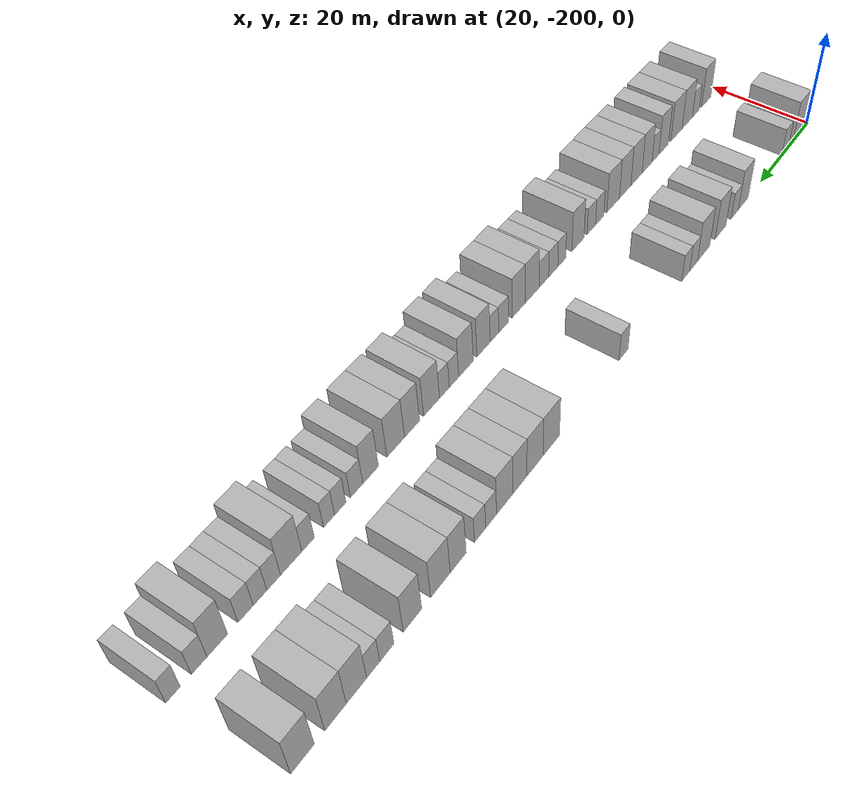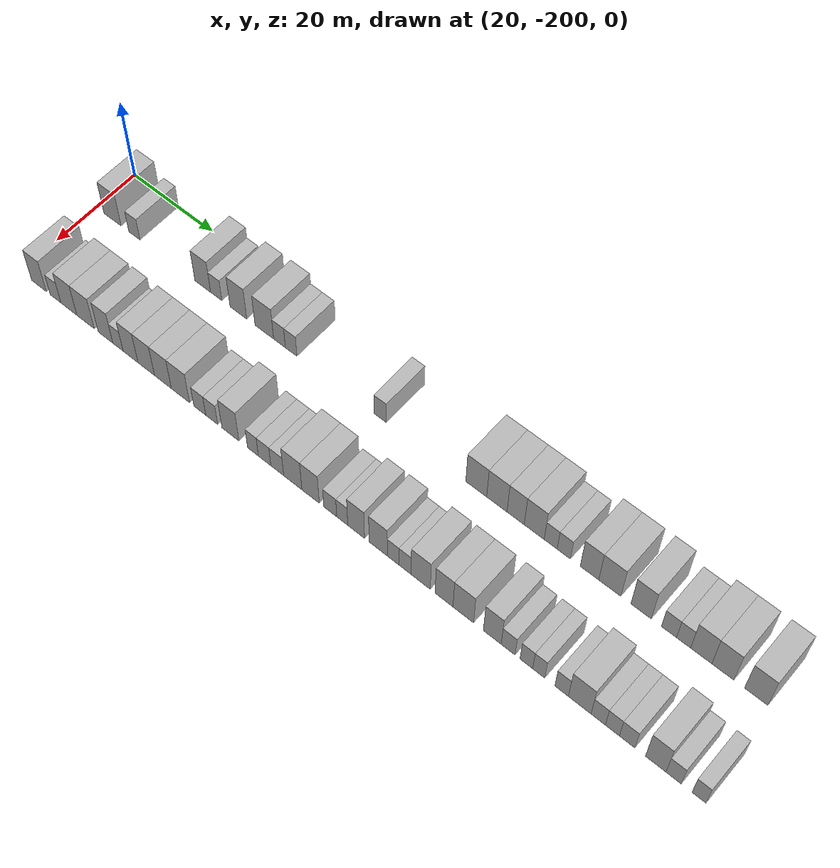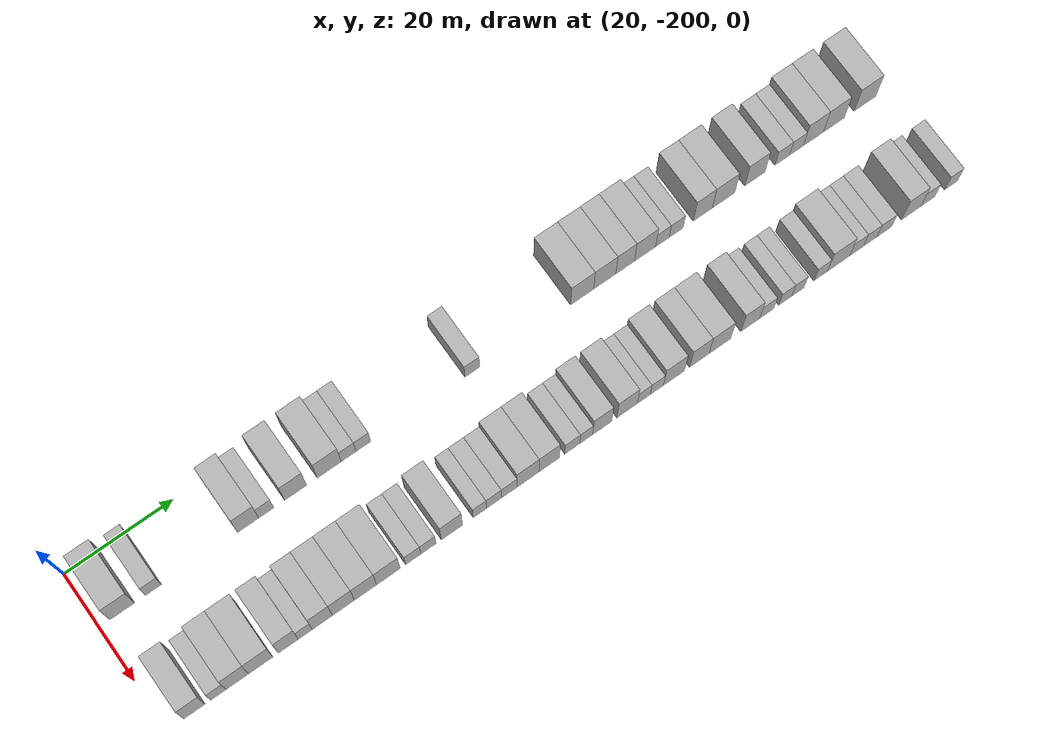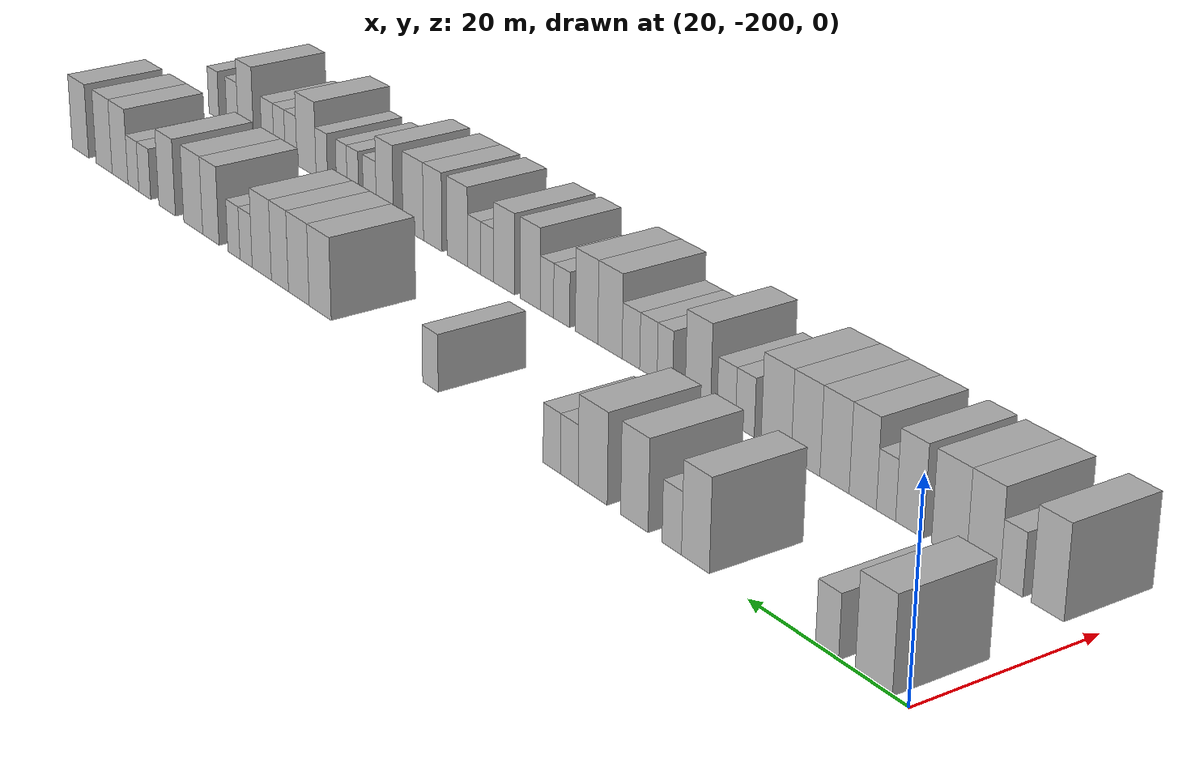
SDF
<sdf version="1.6">
 <world name="default">
  <model name="building_1">
   <static>1</static>
   <pose>25.0000 -195.7773 0 0.000000 0.000000 0.000000</pose>
   <link name="link">
    <pose>0 0 4.50 0 0 0</pose>
    <collision name="collision"><geometry><box><size>10.0000 4.4454 9.0000</size></box></geometry></collision>
    <visual name="visual">
     <cast_shadows>0</cast_shadows>
     <geometry><box><size>10.0000 4.4454 9.0000</size></box></geometry>
     <material>
      <script>
       <uri>model://HANNAS_wall/materials/scripts</uri>
       <uri>model://HANNAS_wall/materials/textures</uri>
       <name>vrc/HANNAS_wall</name>
      </script>
     </material>
    </visual>
   </link>
  </model>
  <model name="building_2">
   <static>1</static>
   <pose>25.0000 -190.1237 0 0.000000 0.000000 0.000000</pose>
   <link name="link">
    <pose>0 0 3.00 0 0 0</pose>
    <collision name="collision"><geometry><box><size>10.0000 2.8618 6.0000</size></box></geometry></collision>
    <visual name="visual">
     <cast_shadows>0</cast_shadows>
     <geometry><box><size>10.0000 2.8618 6.0000</size></box></geometry>
     <material>
      <script>
       <uri>model://HANNAS_wall/materials/scripts</uri>
       <uri>model://HANNAS_wall/materials/textures</uri>
       <name>vrc/HANNAS_wall</name>
      </script>
     </material>
    </visual>
   </link>
  </model>
  <model name="building_3">
   <static>1</static>
   <pose>25.0000 -172.8571 0 0.000000 0.000000 0.000000</pose>
   <link name="link">
    <pose>0 0 4.50 0 0 0</pose>
    <collision name="collision"><geometry><box><size>10.0000 3.8905 9.0000</size></box></geometry></collision>
    <visual name="visual">
     <cast_shadows>0</cast_shadows>
     <geometry><box><size>10.0000 3.8905 9.0000</size></box></geometry>
     <material>
      <script>
       <uri>model://HANNAS_wall/materials/scripts</uri>
       <uri>model://HANNAS_wall/materials/textures</uri>
       <name>vrc/HANNAS_wall</name>
      </script>
     </material>
    </visual>
   </link>
  </model>
  <model name="building_4">
   <static>1</static>
   <pose>25.0000 -169.5295 0 0.000000 0.000000 0.000000</pose>
   <link name="link">
    <pose>0 0 3.00 0 0 0</pose>
    <collision name="collision"><geometry><box><size>10.0000 2.7647 6.0000</size></box></geometry></collision>
    <visual name="visual">
     <cast_shadows>0</cast_shadows>
     <geometry><box><size>10.0000 2.7647 6.0000</size></box></geometry>
     <material>
      <script>
       <uri>model://HANNAS_wall/materials/scripts</uri>
       <uri>model://HANNAS_wall/materials/textures</uri>
       <name>vrc/HANNAS_wall</name>
      </script>
     </material>
    </visual>
   </link>
  </model>
  <model name="building_5">
   <static>1</static>
   <pose>25.0000 -164.1152 0 0.000000 0.000000 0.000000</pose>
   <link name="link">
    <pose>0 0 4.50 0 0 0</pose>
    <collision name="collision"><geometry><box><size>10.0000 4.0638 9.0000</size></box></geometry></collision>
    <visual name="visual">
     <cast_shadows>0</cast_shadows>
     <geometry><box><size>10.0000 4.0638 9.0000</size></box></geometry>
     <material>
      <script>
       <uri>model://HANNAS_wall/materials/scripts</uri>
       <uri>model://HANNAS_wall/materials/textures</uri>
       <name>vrc/HANNAS_wall</name>
      </script>
     </material>
    </visual>
   </link>
  </model>
  <model name="building_6">
   <static>1</static>
   <pose>25.0000 -157.8585 0 0.000000 0.000000 0.000000</pose>
   <link name="link">
    <pose>0 0 4.50 0 0 0</pose>
    <collision name="collision"><geometry><box><size>10.0000 4.4497 9.0000</size></box></geometry></collision>
    <visual name="visual">
     <cast_shadows>0</cast_shadows>
     <geometry><box><size>10.0000 4.4497 9.0000</size></box></geometry>
     <material>
      <script>
       <uri>model://HANNAS_wall/materials/scripts</uri>
       <uri>model://HANNAS_wall/materials/textures</uri>
       <name>vrc/HANNAS_wall</name>
      </script>
     </material>
    </visual>
   </link>
  </model>
  <model name="building_7">
   <static>1</static>
   <pose>25.0000 -154.2386 0 0.000000 0.000000 0.000000</pose>
   <link name="link">
    <pose>0 0 3.00 0 0 0</pose>
    <collision name="collision"><geometry><box><size>10.0000 2.7901 6.0000</size></box></geometry></collision>
    <visual name="visual">
     <cast_shadows>0</cast_shadows>
     <geometry><box><size>10.0000 2.7901 6.0000</size></box></geometry>
     <material>
      <script>
       <uri>model://HANNAS_wall/materials/scripts</uri>
       <uri>model://HANNAS_wall/materials/textures</uri>
       <name>vrc/HANNAS_wall</name>
      </script>
     </material>
    </visual>
   </link>
  </model>
  <model name="building_8">
   <static>1</static>
   <pose>25.0000 -151.4736 0 0.000000 0.000000 0.000000</pose>
   <link name="link">
    <pose>0 0 3.00 0 0 0</pose>
    <collision name="collision"><geometry><box><size>10.0000 2.7399 6.0000</size></box></geometry></collision>
    <visual name="visual">
     <cast_shadows>0</cast_shadows>
     <geometry><box><size>10.0000 2.7399 6.0000</size></box></geometry>
     <material>
      <script>
       <uri>model://HANNAS_wall/materials/scripts</uri>
       <uri>model://HANNAS_wall/materials/textures</uri>
       <name>vrc/HANNAS_wall</name>
      </script>
     </material>
    </visual>
   </link>
  </model>
  <model name="building_9">
   <static>1</static>
   <pose>25.0000 -130.8985 0 0.000000 0.000000 0.000000</pose>
   <link name="link">
    <pose>0 0 3.00 0 0 0</pose>
    <collision name="collision"><geometry><box><size>10.0000 2.8034 6.0000</size></box></geometry></collision>
    <visual name="visual">
     <cast_shadows>0</cast_shadows>
     <geometry><box><size>10.0000 2.8034 6.0000</size></box></geometry>
     <material>
      <script>
       <uri>model://HANNAS_wall/materials/scripts</uri>
       <uri>model://HANNAS_wall/materials/textures</uri>
       <name>vrc/HANNAS_wall</name>
      </script>
     </material>
    </visual>
   </link>
  </model>
  <model name="building_10">
   <static>1</static>
   <pose>25.0000 -109.7788 0 0.000000 0.000000 0.000000</pose>
   <link name="link">
    <pose>0 0 4.50 0 0 0</pose>
    <collision name="collision"><geometry><box><size>10.0000 4.4786 9.0000</size></box></geometry></collision>
    <visual name="visual">
     <cast_shadows>0</cast_shadows>
     <geometry><box><size>10.0000 4.4786 9.0000</size></box></geometry>
     <material>
      <script>
       <uri>model://HANNAS_wall/materials/scripts</uri>
       <uri>model://HANNAS_wall/materials/textures</uri>
       <name>vrc/HANNAS_wall</name>
      </script>
     </material>
    </visual>
   </link>
  </model>
  <model name="building_11">
   <static>1</static>
   <pose>25.0000 -105.3849 0 0.000000 0.000000 0.000000</pose>
   <link name="link">
    <pose>0 0 4.50 0 0 0</pose>
    <collision name="collision"><geometry><box><size>10.0000 4.3093 9.0000</size></box></geometry></collision>
    <visual name="visual">
     <cast_shadows>0</cast_shadows>
     <geometry><box><size>10.0000 4.3093 9.0000</size></box></geometry>
     <material>
      <script>
       <uri>model://HANNAS_wall/materials/scripts</uri>
       <uri>model://HANNAS_wall/materials/textures</uri>
       <name>vrc/HANNAS_wall</name>
      </script>
     </material>
    </visual>
   </link>
  </model>
  <model name="building_12">
   <static>1</static>
   <pose>25.0000 -101.4164 0 0.000000 0.000000 0.000000</pose>
   <link name="link">
    <pose>0 0 4.50 0 0 0</pose>
    <collision name="collision"><geometry><box><size>10.0000 3.6275 9.0000</size></box></geometry></collision>
    <visual name="visual">
     <cast_shadows>0</cast_shadows>
     <geometry><box><size>10.0000 3.6275 9.0000</size></box></geometry>
     <material>
      <script>
       <uri>model://HANNAS_wall/materials/scripts</uri>
       <uri>model://HANNAS_wall/materials/textures</uri>
       <name>vrc/HANNAS_wall</name>
      </script>
     </material>
    </visual>
   </link>
  </model>
  <model name="building_13">
   <static>1</static>
   <pose>25.0000 -97.5190 0 0.000000 0.000000 0.000000</pose>
   <link name="link">
    <pose>0 0 4.50 0 0 0</pose>
    <collision name="collision"><geometry><box><size>10.0000 4.1674 9.0000</size></box></geometry></collision>
    <visual name="visual">
     <cast_shadows>0</cast_shadows>
     <geometry><box><size>10.0000 4.1674 9.0000</size></box></geometry>
     <material>
      <script>
       <uri>model://HANNAS_wall/materials/scripts</uri>
       <uri>model://HANNAS_wall/materials/textures</uri>
       <name>vrc/HANNAS_wall</name>
      </script>
     </material>
    </visual>
   </link>
  </model>
  <model name="building_14">
   <static>1</static>
   <pose>25.0000 -94.0891 0 0.000000 0.000000 0.000000</pose>
   <link name="link">
    <pose>0 0 3.00 0 0 0</pose>
    <collision name="collision"><geometry><box><size>10.0000 2.6924 6.0000</size></box></geometry></collision>
    <visual name="visual">
     <cast_shadows>0</cast_shadows>
     <geometry><box><size>10.0000 2.6924 6.0000</size></box></geometry>
     <material>
      <script>
       <uri>model://HANNAS_wall/materials/scripts</uri>
       <uri>model://HANNAS_wall/materials/textures</uri>
       <name>vrc/HANNAS_wall</name>
      </script>
     </material>
    </visual>
   </link>
  </model>
  <model name="building_15">
   <static>1</static>
   <pose>25.0000 -91.3764 0 0.000000 0.000000 0.000000</pose>
   <link name="link">
    <pose>0 0 3.00 0 0 0</pose>
    <collision name="collision"><geometry><box><size>10.0000 2.7331 6.0000</size></box></geometry></collision>
    <visual name="visual">
     <cast_shadows>0</cast_shadows>
     <geometry><box><size>10.0000 2.7331 6.0000</size></box></geometry>
     <material>
      <script>
       <uri>model://HANNAS_wall/materials/scripts</uri>
       <uri>model://HANNAS_wall/materials/textures</uri>
       <name>vrc/HANNAS_wall</name>
      </script>
     </material>
    </visual>
   </link>
  </model>
  <model name="building_16">
   <static>1</static>
   <pose>25.0000 -86.1300 0 0.000000 0.000000 0.000000</pose>
   <link name="link">
    <pose>0 0 4.50 0 0 0</pose>
    <collision name="collision"><geometry><box><size>10.0000 3.7596 9.0000</size></box></geometry></collision>
    <visual name="visual">
     <cast_shadows>0</cast_shadows>
     <geometry><box><size>10.0000 3.7596 9.0000</size></box></geometry>
     <material>
      <script>
       <uri>model://HANNAS_wall/materials/scripts</uri>
       <uri>model://HANNAS_wall/materials/textures</uri>
       <name>vrc/HANNAS_wall</name>
      </script>
     </material>
    </visual>
   </link>
  </model>
  <model name="building_17">
   <static>1</static>
   <pose>25.0000 -82.0215 0 0.000000 0.000000 0.000000</pose>
   <link name="link">
    <pose>0 0 4.50 0 0 0</pose>
    <collision name="collision"><geometry><box><size>10.0000 4.4574 9.0000</size></box></geometry></collision>
    <visual name="visual">
     <cast_shadows>0</cast_shadows>
     <geometry><box><size>10.0000 4.4574 9.0000</size></box></geometry>
     <material>
      <script>
       <uri>model://HANNAS_wall/materials/scripts</uri>
       <uri>model://HANNAS_wall/materials/textures</uri>
       <name>vrc/HANNAS_wall</name>
      </script>
     </material>
    </visual>
   </link>
  </model>
  <model name="building_18">
   <static>1</static>
   <pose>25.0000 -75.7765 0 0.000000 0.000000 0.000000</pose>
   <link name="link">
    <pose>0 0 4.50 0 0 0</pose>
    <collision name="collision"><geometry><box><size>10.0000 4.0327 9.0000</size></box></geometry></collision>
    <visual name="visual">
     <cast_shadows>0</cast_shadows>
     <geometry><box><size>10.0000 4.0327 9.0000</size></box></geometry>
     <material>
      <script>
       <uri>model://HANNAS_wall/materials/scripts</uri>
       <uri>model://HANNAS_wall/materials/textures</uri>
       <name>vrc/HANNAS_wall</name>
      </script>
     </material>
    </visual>
   </link>
  </model>
  <model name="building_19">
   <static>1</static>
   <pose>25.0000 -70.2856 0 0.000000 0.000000 0.000000</pose>
   <link name="link">
    <pose>0 0 3.00 0 0 0</pose>
    <collision name="collision"><geometry><box><size>10.0000 2.9492 6.0000</size></box></geometry></collision>
    <visual name="visual">
     <cast_shadows>0</cast_shadows>
     <geometry><box><size>10.0000 2.9492 6.0000</size></box></geometry>
     <material>
      <script>
       <uri>model://HANNAS_wall/materials/scripts</uri>
       <uri>model://HANNAS_wall/materials/textures</uri>
       <name>vrc/HANNAS_wall</name>
      </script>
     </material>
    </visual>
   </link>
  </model>
  <model name="building_20">
   <static>1</static>
   <pose>25.0000 -67.4418 0 0.000000 0.000000 0.000000</pose>
   <link name="link">
    <pose>0 0 3.00 0 0 0</pose>
    <collision name="collision"><geometry><box><size>10.0000 2.7383 6.0000</size></box></geometry></collision>
    <visual name="visual">
     <cast_shadows>0</cast_shadows>
     <geometry><box><size>10.0000 2.7383 6.0000</size></box></geometry>
     <material>
      <script>
       <uri>model://HANNAS_wall/materials/scripts</uri>
       <uri>model://HANNAS_wall/materials/textures</uri>
       <name>vrc/HANNAS_wall</name>
      </script>
     </material>
    </visual>
   </link>
  </model>
  <model name="building_21">
   <static>1</static>
   <pose>25.0000 -64.0328 0 0.000000 0.000000 0.000000</pose>
   <link name="link">
    <pose>0 0 4.50 0 0 0</pose>
    <collision name="collision"><geometry><box><size>10.0000 4.0797 9.0000</size></box></geometry></collision>
    <visual name="visual">
     <cast_shadows>0</cast_shadows>
     <geometry><box><size>10.0000 4.0797 9.0000</size></box></geometry>
     <material>
      <script>
       <uri>model://HANNAS_wall/materials/scripts</uri>
       <uri>model://HANNAS_wall/materials/textures</uri>
       <name>vrc/HANNAS_wall</name>
      </script>
     </material>
    </visual>
   </link>
  </model>
  <model name="building_22">
   <static>1</static>
   <pose>25.0000 -59.8915 0 0.000000 0.000000 0.000000</pose>
   <link name="link">
    <pose>0 0 4.50 0 0 0</pose>
    <collision name="collision"><geometry><box><size>10.0000 4.2029 9.0000</size></box></geometry></collision>
    <visual name="visual">
     <cast_shadows>0</cast_shadows>
     <geometry><box><size>10.0000 4.2029 9.0000</size></box></geometry>
     <material>
      <script>
       <uri>model://HANNAS_wall/materials/scripts</uri>
       <uri>model://HANNAS_wall/materials/textures</uri>
       <name>vrc/HANNAS_wall</name>
      </script>
     </material>
    </visual>
   </link>
  </model>
  <model name="building_23">
   <static>1</static>
   <pose>25.0000 -53.5899 0 0.000000 0.000000 0.000000</pose>
   <link name="link">
    <pose>0 0 4.50 0 0 0</pose>
    <collision name="collision"><geometry><box><size>10.0000 4.4005 9.0000</size></box></geometry></collision>
    <visual name="visual">
     <cast_shadows>0</cast_shadows>
     <geometry><box><size>10.0000 4.4005 9.0000</size></box></geometry>
     <material>
      <script>
       <uri>model://HANNAS_wall/materials/scripts</uri>
       <uri>model://HANNAS_wall/materials/textures</uri>
       <name>vrc/HANNAS_wall</name>
      </script>
     </material>
    </visual>
   </link>
  </model>
  <model name="building_85">
   <static>1</static>
   <pose>44.0000 -195.0962 0 0.000000 0.000000 0.000000</pose>
   <link name="link">
    <pose>0 0 4.50 0 0 0</pose>
    <collision name="collision"><geometry><box><size>10.0000 3.8077 9.0000</size></box></geometry></collision>
    <visual name="visual">
     <cast_shadows>0</cast_shadows>
     <geometry><box><size>10.0000 3.8077 9.0000</size></box></geometry>
     <material>
      <script>
       <uri>model://HANNAS_wall/materials/scripts</uri>
       <uri>model://HANNAS_wall/materials/textures</uri>
       <name>vrc/HANNAS_wall</name>
      </script>
     </material>
    </visual>
   </link>
  </model>
  <model name="building_86">
   <static>1</static>
   <pose>44.0000 -190.8174 0 0.000000 0.000000 0.000000</pose>
   <link name="link">
    <pose>0 0 3.00 0 0 0</pose>
    <collision name="collision"><geometry><box><size>10.0000 2.7499 6.0000</size></box></geometry></collision>
    <visual name="visual">
     <cast_shadows>0</cast_shadows>
     <geometry><box><size>10.0000 2.7499 6.0000</size></box></geometry>
     <material>
      <script>
       <uri>model://HANNAS_wall/materials/scripts</uri>
       <uri>model://HANNAS_wall/materials/textures</uri>
       <name>vrc/HANNAS_wall</name>
      </script>
     </material>
    </visual>
   </link>
  </model>
  <model name="building_87">
   <static>1</static>
   <pose>44.0000 -187.4049 0 0.000000 0.000000 0.000000</pose>
   <link name="link">
    <pose>0 0 4.50 0 0 0</pose>
    <collision name="collision"><geometry><box><size>10.0000 4.0750 9.0000</size></box></geometry></collision>
    <visual name="visual">
     <cast_shadows>0</cast_shadows>
     <geometry><box><size>10.0000 4.0750 9.0000</size></box></geometry>
     <material>
      <script>
       <uri>model://HANNAS_wall/materials/scripts</uri>
       <uri>model://HANNAS_wall/materials/textures</uri>
       <name>vrc/HANNAS_wall</name>
      </script>
     </material>
    </visual>
   </link>
  </model>
  <model name="building_88">
   <static>1</static>
   <pose>44.0000 -183.1729 0 0.000000 0.000000 0.000000</pose>
   <link name="link">
    <pose>0 0 4.50 0 0 0</pose>
    <collision name="collision"><geometry><box><size>10.0000 4.3891 9.0000</size></box></geometry></collision>
    <visual name="visual">
     <cast_shadows>0</cast_shadows>
     <geometry><box><size>10.0000 4.3891 9.0000</size></box></geometry>
     <material>
      <script>
       <uri>model://HANNAS_wall/materials/scripts</uri>
       <uri>model://HANNAS_wall/materials/textures</uri>
       <name>vrc/HANNAS_wall</name>
      </script>
     </material>
    </visual>
   </link>
  </model>
  <model name="building_89">
   <static>1</static>
   <pose>44.0000 -178.1632 0 0.000000 0.000000 0.000000</pose>
   <link name="link">
    <pose>0 0 4.50 0 0 0</pose>
    <collision name="collision"><geometry><box><size>10.0000 3.6302 9.0000</size></box></geometry></collision>
    <visual name="visual">
     <cast_shadows>0</cast_shadows>
     <geometry><box><size>10.0000 3.6302 9.0000</size></box></geometry>
     <material>
      <script>
       <uri>model://HANNAS_wall/materials/scripts</uri>
       <uri>model://HANNAS_wall/materials/textures</uri>
       <name>vrc/HANNAS_wall</name>
      </script>
     </material>
    </visual>
   </link>
  </model>
  <model name="building_90">
   <static>1</static>
   <pose>44.0000 -175.0751 0 0.000000 0.000000 0.000000</pose>
   <link name="link">
    <pose>0 0 3.00 0 0 0</pose>
    <collision name="collision"><geometry><box><size>10.0000 2.5460 6.0000</size></box></geometry></collision>
    <visual name="visual">
     <cast_shadows>0</cast_shadows>
     <geometry><box><size>10.0000 2.5460 6.0000</size></box></geometry>
     <material>
      <script>
       <uri>model://HANNAS_wall/materials/scripts</uri>
       <uri>model://HANNAS_wall/materials/textures</uri>
       <name>vrc/HANNAS_wall</name>
      </script>
     </material>
    </visual>
   </link>
  </model>
  <model name="building_91">
   <static>1</static>
   <pose>44.0000 -171.9619 0 0.000000 0.000000 0.000000</pose>
   <link name="link">
    <pose>0 0 4.50 0 0 0</pose>
    <collision name="collision"><geometry><box><size>10.0000 3.6804 9.0000</size></box></geometry></collision>
    <visual name="visual">
     <cast_shadows>0</cast_shadows>
     <geometry><box><size>10.0000 3.6804 9.0000</size></box></geometry>
     <material>
      <script>
       <uri>model://HANNAS_wall/materials/scripts</uri>
       <uri>model://HANNAS_wall/materials/textures</uri>
       <name>vrc/HANNAS_wall</name>
      </script>
     </material>
    </visual>
   </link>
  </model>
  <model name="building_92">
   <static>1</static>
   <pose>44.0000 -168.1049 0 0.000000 0.000000 0.000000</pose>
   <link name="link">
    <pose>0 0 4.50 0 0 0</pose>
    <collision name="collision"><geometry><box><size>10.0000 4.0336 9.0000</size></box></geometry></collision>
    <visual name="visual">
     <cast_shadows>0</cast_shadows>
     <geometry><box><size>10.0000 4.0336 9.0000</size></box></geometry>
     <material>
      <script>
       <uri>model://HANNAS_wall/materials/scripts</uri>
       <uri>model://HANNAS_wall/materials/textures</uri>
       <name>vrc/HANNAS_wall</name>
      </script>
     </material>
    </visual>
   </link>
  </model>
  <model name="building_93">
   <static>1</static>
   <pose>44.0000 -164.0470 0 0.000000 0.000000 0.000000</pose>
   <link name="link">
    <pose>0 0 4.50 0 0 0</pose>
    <collision name="collision"><geometry><box><size>10.0000 4.0822 9.0000</size></box></geometry></collision>
    <visual name="visual">
     <cast_shadows>0</cast_shadows>
     <geometry><box><size>10.0000 4.0822 9.0000</size></box></geometry>
     <material>
      <script>
       <uri>model://HANNAS_wall/materials/scripts</uri>
       <uri>model://HANNAS_wall/materials/textures</uri>
       <name>vrc/HANNAS_wall</name>
      </script>
     </material>
    </visual>
   </link>
  </model>
  <model name="building_94">
   <static>1</static>
   <pose>44.0000 -159.8199 0 0.000000 0.000000 0.000000</pose>
   <link name="link">
    <pose>0 0 4.50 0 0 0</pose>
    <collision name="collision"><geometry><box><size>10.0000 4.3719 9.0000</size></box></geometry></collision>
    <visual name="visual">
     <cast_shadows>0</cast_shadows>
     <geometry><box><size>10.0000 4.3719 9.0000</size></box></geometry>
     <material>
      <script>
       <uri>model://HANNAS_wall/materials/scripts</uri>
       <uri>model://HANNAS_wall/materials/textures</uri>
       <name>vrc/HANNAS_wall</name>
      </script>
     </material>
    </visual>
   </link>
  </model>
  <model name="building_95">
   <static>1</static>
   <pose>44.0000 -155.2179 0 0.000000 0.000000 0.000000</pose>
   <link name="link">
    <pose>0 0 3.00 0 0 0</pose>
    <collision name="collision"><geometry><box><size>10.0000 2.8320 6.0000</size></box></geometry></collision>
    <visual name="visual">
     <cast_shadows>0</cast_shadows>
     <geometry><box><size>10.0000 2.8320 6.0000</size></box></geometry>
     <material>
      <script>
       <uri>model://HANNAS_wall/materials/scripts</uri>
       <uri>model://HANNAS_wall/materials/textures</uri>
       <name>vrc/HANNAS_wall</name>
      </script>
     </material>
    </visual>
   </link>
  </model>
  <model name="building_96">
   <static>1</static>
   <pose>44.0000 -152.3988 0 0.000000 0.000000 0.000000</pose>
   <link name="link">
    <pose>0 0 3.00 0 0 0</pose>
    <collision name="collision"><geometry><box><size>10.0000 2.8062 6.0000</size></box></geometry></collision>
    <visual name="visual">
     <cast_shadows>0</cast_shadows>
     <geometry><box><size>10.0000 2.8062 6.0000</size></box></geometry>
     <material>
      <script>
       <uri>model://HANNAS_wall/materials/scripts</uri>
       <uri>model://HANNAS_wall/materials/textures</uri>
       <name>vrc/HANNAS_wall</name>
      </script>
     </material>
    </visual>
   </link>
  </model>
  <model name="building_97">
   <static>1</static>
   <pose>44.0000 -148.0163 0 0.000000 0.000000 0.000000</pose>
   <link name="link">
    <pose>0 0 4.50 0 0 0</pose>
    <collision name="collision"><geometry><box><size>10.0000 3.9588 9.0000</size></box></geometry></collision>
    <visual name="visual">
     <cast_shadows>0</cast_shadows>
     <geometry><box><size>10.0000 3.9588 9.0000</size></box></geometry>
     <material>
      <script>
       <uri>model://HANNAS_wall/materials/scripts</uri>
       <uri>model://HANNAS_wall/materials/textures</uri>
       <name>vrc/HANNAS_wall</name>
      </script>
     </material>
    </visual>
   </link>
  </model>
  <model name="building_98">
   <static>1</static>
   <pose>44.0000 -142.7936 0 0.000000 0.000000 0.000000</pose>
   <link name="link">
    <pose>0 0 3.00 0 0 0</pose>
    <collision name="collision"><geometry><box><size>10.0000 2.4866 6.0000</size></box></geometry></collision>
    <visual name="visual">
     <cast_shadows>0</cast_shadows>
     <geometry><box><size>10.0000 2.4866 6.0000</size></box></geometry>
     <material>
      <script>
       <uri>model://HANNAS_wall/materials/scripts</uri>
       <uri>model://HANNAS_wall/materials/textures</uri>
       <name>vrc/HANNAS_wall</name>
      </script>
     </material>
    </visual>
   </link>
  </model>
  <model name="building_99">
   <static>1</static>
   <pose>44.0000 -140.1272 0 0.000000 0.000000 0.000000</pose>
   <link name="link">
    <pose>0 0 3.00 0 0 0</pose>
    <collision name="collision"><geometry><box><size>10.0000 2.8462 6.0000</size></box></geometry></collision>
    <visual name="visual">
     <cast_shadows>0</cast_shadows>
     <geometry><box><size>10.0000 2.8462 6.0000</size></box></geometry>
     <material>
      <script>
       <uri>model://HANNAS_wall/materials/scripts</uri>
       <uri>model://HANNAS_wall/materials/textures</uri>
       <name>vrc/HANNAS_wall</name>
      </script>
     </material>
    </visual>
   </link>
  </model>
  <model name="building_100">
   <static>1</static>
   <pose>44.0000 -137.2386 0 0.000000 0.000000 0.000000</pose>
   <link name="link">
    <pose>0 0 3.00 0 0 0</pose>
    <collision name="collision"><geometry><box><size>10.0000 2.9309 6.0000</size></box></geometry></collision>
    <visual name="visual">
     <cast_shadows>0</cast_shadows>
     <geometry><box><size>10.0000 2.9309 6.0000</size></box></geometry>
     <material>
      <script>
       <uri>model://HANNAS_wall/materials/scripts</uri>
       <uri>model://HANNAS_wall/materials/textures</uri>
       <name>vrc/HANNAS_wall</name>
      </script>
     </material>
    </visual>
   </link>
  </model>
  <model name="building_101">
   <static>1</static>
   <pose>44.0000 -133.7177 0 0.000000 0.000000 0.000000</pose>
   <link name="link">
    <pose>0 0 4.50 0 0 0</pose>
    <collision name="collision"><geometry><box><size>10.0000 4.1108 9.0000</size></box></geometry></collision>
    <visual name="visual">
     <cast_shadows>0</cast_shadows>
     <geometry><box><size>10.0000 4.1108 9.0000</size></box></geometry>
     <material>
      <script>
       <uri>model://HANNAS_wall/materials/scripts</uri>
       <uri>model://HANNAS_wall/materials/textures</uri>
       <name>vrc/HANNAS_wall</name>
      </script>
     </material>
    </visual>
   </link>
  </model>
  <model name="building_102">
   <static>1</static>
   <pose>44.0000 -129.7175 0 0.000000 0.000000 0.000000</pose>
   <link name="link">
    <pose>0 0 4.50 0 0 0</pose>
    <collision name="collision"><geometry><box><size>10.0000 3.8896 9.0000</size></box></geometry></collision>
    <visual name="visual">
     <cast_shadows>0</cast_shadows>
     <geometry><box><size>10.0000 3.8896 9.0000</size></box></geometry>
     <material>
      <script>
       <uri>model://HANNAS_wall/materials/scripts</uri>
       <uri>model://HANNAS_wall/materials/textures</uri>
       <name>vrc/HANNAS_wall</name>
      </script>
     </material>
    </visual>
   </link>
  </model>
  <model name="building_103">
   <static>1</static>
   <pose>44.0000 -125.3457 0 0.000000 0.000000 0.000000</pose>
   <link name="link">
    <pose>0 0 3.00 0 0 0</pose>
    <collision name="collision"><geometry><box><size>10.0000 2.8540 6.0000</size></box></geometry></collision>
    <visual name="visual">
     <cast_shadows>0</cast_shadows>
     <geometry><box><size>10.0000 2.8540 6.0000</size></box></geometry>
     <material>
      <script>
       <uri>model://HANNAS_wall/materials/scripts</uri>
       <uri>model://HANNAS_wall/materials/textures</uri>
       <name>vrc/HANNAS_wall</name>
      </script>
     </material>
    </visual>
   </link>
  </model>
  <model name="building_104">
   <static>1</static>
   <pose>44.0000 -122.7043 0 0.000000 0.000000 0.000000</pose>
   <link name="link">
    <pose>0 0 3.00 0 0 0</pose>
    <collision name="collision"><geometry><box><size>10.0000 2.4289 6.0000</size></box></geometry></collision>
    <visual name="visual">
     <cast_shadows>0</cast_shadows>
     <geometry><box><size>10.0000 2.4289 6.0000</size></box></geometry>
     <material>
      <script>
       <uri>model://HANNAS_wall/materials/scripts</uri>
       <uri>model://HANNAS_wall/materials/textures</uri>
       <name>vrc/HANNAS_wall</name>
      </script>
     </material>
    </visual>
   </link>
  </model>
  <model name="building_105">
   <static>1</static>
   <pose>44.0000 -119.6527 0 0.000000 0.000000 0.000000</pose>
   <link name="link">
    <pose>0 0 4.50 0 0 0</pose>
    <collision name="collision"><geometry><box><size>10.0000 3.6745 9.0000</size></box></geometry></collision>
    <visual name="visual">
     <cast_shadows>0</cast_shadows>
     <geometry><box><size>10.0000 3.6745 9.0000</size></box></geometry>
     <material>
      <script>
       <uri>model://HANNAS_wall/materials/scripts</uri>
       <uri>model://HANNAS_wall/materials/textures</uri>
       <name>vrc/HANNAS_wall</name>
      </script>
     </material>
    </visual>
   </link>
  </model>
  <model name="building_106">
   <static>1</static>
   <pose>44.0000 -114.8572 0 0.000000 0.000000 0.000000</pose>
   <link name="link">
    <pose>0 0 4.50 0 0 0</pose>
    <collision name="collision"><geometry><box><size>10.0000 3.9164 9.0000</size></box></geometry></collision>
    <visual name="visual">
     <cast_shadows>0</cast_shadows>
     <geometry><box><size>10.0000 3.9164 9.0000</size></box></geometry>
     <material>
      <script>
       <uri>model://HANNAS_wall/materials/scripts</uri>
       <uri>model://HANNAS_wall/materials/textures</uri>
       <name>vrc/HANNAS_wall</name>
      </script>
     </material>
    </visual>
   </link>
  </model>
  <model name="building_107">
   <static>1</static>
   <pose>44.0000 -111.6564 0 0.000000 0.000000 0.000000</pose>
   <link name="link">
    <pose>0 0 3.00 0 0 0</pose>
    <collision name="collision"><geometry><box><size>10.0000 2.4853 6.0000</size></box></geometry></collision>
    <visual name="visual">
     <cast_shadows>0</cast_shadows>
     <geometry><box><size>10.0000 2.4853 6.0000</size></box></geometry>
     <material>
      <script>
       <uri>model://HANNAS_wall/materials/scripts</uri>
       <uri>model://HANNAS_wall/materials/textures</uri>
       <name>vrc/HANNAS_wall</name>
      </script>
     </material>
    </visual>
   </link>
  </model>
  <model name="building_108">
   <static>1</static>
   <pose>44.0000 -109.1353 0 0.000000 0.000000 0.000000</pose>
   <link name="link">
    <pose>0 0 3.00 0 0 0</pose>
    <collision name="collision"><geometry><box><size>10.0000 2.5568 6.0000</size></box></geometry></collision>
    <visual name="visual">
     <cast_shadows>0</cast_shadows>
     <geometry><box><size>10.0000 2.5568 6.0000</size></box></geometry>
     <material>
      <script>
       <uri>model://HANNAS_wall/materials/scripts</uri>
       <uri>model://HANNAS_wall/materials/textures</uri>
       <name>vrc/HANNAS_wall</name>
      </script>
     </material>
    </visual>
   </link>
  </model>
  <model name="building_109">
   <static>1</static>
   <pose>44.0000 -105.8193 0 0.000000 0.000000 0.000000</pose>
   <link name="link">
    <pose>0 0 4.50 0 0 0</pose>
    <collision name="collision"><geometry><box><size>10.0000 4.0753 9.0000</size></box></geometry></collision>
    <visual name="visual">
     <cast_shadows>0</cast_shadows>
     <geometry><box><size>10.0000 4.0753 9.0000</size></box></geometry>
     <material>
      <script>
       <uri>model://HANNAS_wall/materials/scripts</uri>
       <uri>model://HANNAS_wall/materials/textures</uri>
       <name>vrc/HANNAS_wall</name>
      </script>
     </material>
    </visual>
   </link>
  </model>
  <model name="building_110">
   <static>1</static>
   <pose>44.0000 -100.9081 0 0.000000 0.000000 0.000000</pose>
   <link name="link">
    <pose>0 0 4.50 0 0 0</pose>
    <collision name="collision"><geometry><box><size>10.0000 3.7471 9.0000</size></box></geometry></collision>
    <visual name="visual">
     <cast_shadows>0</cast_shadows>
     <geometry><box><size>10.0000 3.7471 9.0000</size></box></geometry>
     <material>
      <script>
       <uri>model://HANNAS_wall/materials/scripts</uri>
       <uri>model://HANNAS_wall/materials/textures</uri>
       <name>vrc/HANNAS_wall</name>
      </script>
     </material>
    </visual>
   </link>
  </model>
  <model name="building_111">
   <static>1</static>
   <pose>44.0000 -96.9060 0 0.000000 0.000000 0.000000</pose>
   <link name="link">
    <pose>0 0 4.50 0 0 0</pose>
    <collision name="collision"><geometry><box><size>10.0000 4.2571 9.0000</size></box></geometry></collision>
    <visual name="visual">
     <cast_shadows>0</cast_shadows>
     <geometry><box><size>10.0000 4.2571 9.0000</size></box></geometry>
     <material>
      <script>
       <uri>model://HANNAS_wall/materials/scripts</uri>
       <uri>model://HANNAS_wall/materials/textures</uri>
       <name>vrc/HANNAS_wall</name>
      </script>
     </material>
    </visual>
   </link>
  </model>
  <model name="building_112">
   <static>1</static>
   <pose>44.0000 -90.9625 0 0.000000 0.000000 0.000000</pose>
   <link name="link">
    <pose>0 0 4.50 0 0 0</pose>
    <collision name="collision"><geometry><box><size>10.0000 3.6298 9.0000</size></box></geometry></collision>
    <visual name="visual">
     <cast_shadows>0</cast_shadows>
     <geometry><box><size>10.0000 3.6298 9.0000</size></box></geometry>
     <material>
      <script>
       <uri>model://HANNAS_wall/materials/scripts</uri>
       <uri>model://HANNAS_wall/materials/textures</uri>
       <name>vrc/HANNAS_wall</name>
      </script>
     </material>
    </visual>
   </link>
  </model>
  <model name="building_113">
   <static>1</static>
   <pose>44.0000 -87.7412 0 0.000000 0.000000 0.000000</pose>
   <link name="link">
    <pose>0 0 3.00 0 0 0</pose>
    <collision name="collision"><geometry><box><size>10.0000 2.8129 6.0000</size></box></geometry></collision>
    <visual name="visual">
     <cast_shadows>0</cast_shadows>
     <geometry><box><size>10.0000 2.8129 6.0000</size></box></geometry>
     <material>
      <script>
       <uri>model://HANNAS_wall/materials/scripts</uri>
       <uri>model://HANNAS_wall/materials/textures</uri>
       <name>vrc/HANNAS_wall</name>
      </script>
     </material>
    </visual>
   </link>
  </model>
  <model name="building_114">
   <static>1</static>
   <pose>44.0000 -84.0669 0 0.000000 0.000000 0.000000</pose>
   <link name="link">
    <pose>0 0 3.00 0 0 0</pose>
    <collision name="collision"><geometry><box><size>10.0000 2.5356 6.0000</size></box></geometry></collision>
    <visual name="visual">
     <cast_shadows>0</cast_shadows>
     <geometry><box><size>10.0000 2.5356 6.0000</size></box></geometry>
     <material>
      <script>
       <uri>model://HANNAS_wall/materials/scripts</uri>
       <uri>model://HANNAS_wall/materials/textures</uri>
       <name>vrc/HANNAS_wall</name>
      </script>
     </material>
    </visual>
   </link>
  </model>
  <model name="building_115">
   <static>1</static>
   <pose>44.0000 -81.5941 0 0.000000 0.000000 0.000000</pose>
   <link name="link">
    <pose>0 0 3.00 0 0 0</pose>
    <collision name="collision"><geometry><box><size>10.0000 2.4101 6.0000</size></box></geometry></collision>
    <visual name="visual">
     <cast_shadows>0</cast_shadows>
     <geometry><box><size>10.0000 2.4101 6.0000</size></box></geometry>
     <material>
      <script>
       <uri>model://HANNAS_wall/materials/scripts</uri>
       <uri>model://HANNAS_wall/materials/textures</uri>
       <name>vrc/HANNAS_wall</name>
      </script>
     </material>
    </visual>
   </link>
  </model>
  <model name="building_116">
   <static>1</static>
   <pose>44.0000 -77.0674 0 0.000000 0.000000 0.000000</pose>
   <link name="link">
    <pose>0 0 3.00 0 0 0</pose>
    <collision name="collision"><geometry><box><size>10.0000 2.6433 6.0000</size></box></geometry></collision>
    <visual name="visual">
     <cast_shadows>0</cast_shadows>
     <geometry><box><size>10.0000 2.6433 6.0000</size></box></geometry>
     <material>
      <script>
       <uri>model://HANNAS_wall/materials/scripts</uri>
       <uri>model://HANNAS_wall/materials/textures</uri>
       <name>vrc/HANNAS_wall</name>
      </script>
     </material>
    </visual>
   </link>
  </model>
  <model name="building_117">
   <static>1</static>
   <pose>44.0000 -73.5334 0 0.000000 0.000000 0.000000</pose>
   <link name="link">
    <pose>0 0 4.50 0 0 0</pose>
    <collision name="collision"><geometry><box><size>10.0000 4.4247 9.0000</size></box></geometry></collision>
    <visual name="visual">
     <cast_shadows>0</cast_shadows>
     <geometry><box><size>10.0000 4.4247 9.0000</size></box></geometry>
     <material>
      <script>
       <uri>model://HANNAS_wall/materials/scripts</uri>
       <uri>model://HANNAS_wall/materials/textures</uri>
       <name>vrc/HANNAS_wall</name>
      </script>
     </material>
    </visual>
   </link>
  </model>
  <model name="building_118">
   <static>1</static>
   <pose>44.0000 -69.9343 0 0.000000 0.000000 0.000000</pose>
   <link name="link">
    <pose>0 0 3.00 0 0 0</pose>
    <collision name="collision"><geometry><box><size>10.0000 2.7736 6.0000</size></box></geometry></collision>
    <visual name="visual">
     <cast_shadows>0</cast_shadows>
     <geometry><box><size>10.0000 2.7736 6.0000</size></box></geometry>
     <material>
      <script>
       <uri>model://HANNAS_wall/materials/scripts</uri>
       <uri>model://HANNAS_wall/materials/textures</uri>
       <name>vrc/HANNAS_wall</name>
      </script>
     </material>
    </visual>
   </link>
  </model>
  <model name="building_119">
   <static>1</static>
   <pose>44.0000 -67.1996 0 0.000000 0.000000 0.000000</pose>
   <link name="link">
    <pose>0 0 3.00 0 0 0</pose>
    <collision name="collision"><geometry><box><size>10.0000 2.6959 6.0000</size></box></geometry></collision>
    <visual name="visual">
     <cast_shadows>0</cast_shadows>
     <geometry><box><size>10.0000 2.6959 6.0000</size></box></geometry>
     <material>
      <script>
       <uri>model://HANNAS_wall/materials/scripts</uri>
       <uri>model://HANNAS_wall/materials/textures</uri>
       <name>vrc/HANNAS_wall</name>
      </script>
     </material>
    </visual>
   </link>
  </model>
  <model name="building_120">
   <static>1</static>
   <pose>44.0000 -64.3715 0 0.000000 0.000000 0.000000</pose>
   <link name="link">
    <pose>0 0 3.00 0 0 0</pose>
    <collision name="collision"><geometry><box><size>10.0000 2.9602 6.0000</size></box></geometry></collision>
    <visual name="visual">
     <cast_shadows>0</cast_shadows>
     <geometry><box><size>10.0000 2.9602 6.0000</size></box></geometry>
     <material>
      <script>
       <uri>model://HANNAS_wall/materials/scripts</uri>
       <uri>model://HANNAS_wall/materials/textures</uri>
       <name>vrc/HANNAS_wall</name>
      </script>
     </material>
    </visual>
   </link>
  </model>
  <model name="building_121">
   <static>1</static>
   <pose>44.0000 -58.9648 0 0.000000 0.000000 0.000000</pose>
   <link name="link">
    <pose>0 0 4.50 0 0 0</pose>
    <collision name="collision"><geometry><box><size>10.0000 3.8532 9.0000</size></box></geometry></collision>
    <visual name="visual">
     <cast_shadows>0</cast_shadows>
     <geometry><box><size>10.0000 3.8532 9.0000</size></box></geometry>
     <material>
      <script>
       <uri>model://HANNAS_wall/materials/scripts</uri>
       <uri>model://HANNAS_wall/materials/textures</uri>
       <name>vrc/HANNAS_wall</name>
      </script>
     </material>
    </visual>
   </link>
  </model>
  <model name="building_122">
   <static>1</static>
   <pose>44.0000 -55.6114 0 0.000000 0.000000 0.000000</pose>
   <link name="link">
    <pose>0 0 3.00 0 0 0</pose>
    <collision name="collision"><geometry><box><size>10.0000 2.8536 6.0000</size></box></geometry></collision>
    <visual name="visual">
     <cast_shadows>0</cast_shadows>
     <geometry><box><size>10.0000 2.8536 6.0000</size></box></geometry>
     <material>
      <script>
       <uri>model://HANNAS_wall/materials/scripts</uri>
       <uri>model://HANNAS_wall/materials/textures</uri>
       <name>vrc/HANNAS_wall</name>
      </script>
     </material>
    </visual>
   </link>
  </model>
  <model name="building_123">
   <static>1</static>
   <pose>44.0000 -50.8928 0 0.000000 0.000000 0.000000</pose>
   <link name="link">
    <pose>0 0 3.00 0 0 0</pose>
    <collision name="collision"><geometry><box><size>10.0000 2.5837 6.0000</size></box></geometry></collision>
    <visual name="visual">
     <cast_shadows>0</cast_shadows>
     <geometry><box><size>10.0000 2.5837 6.0000</size></box></geometry>
     <material>
      <script>
       <uri>model://HANNAS_wall/materials/scripts</uri>
       <uri>model://HANNAS_wall/materials/textures</uri>
       <name>vrc/HANNAS_wall</name>
      </script>
     </material>
    </visual>
   </link>
  </model>
 </world>
</sdf>
